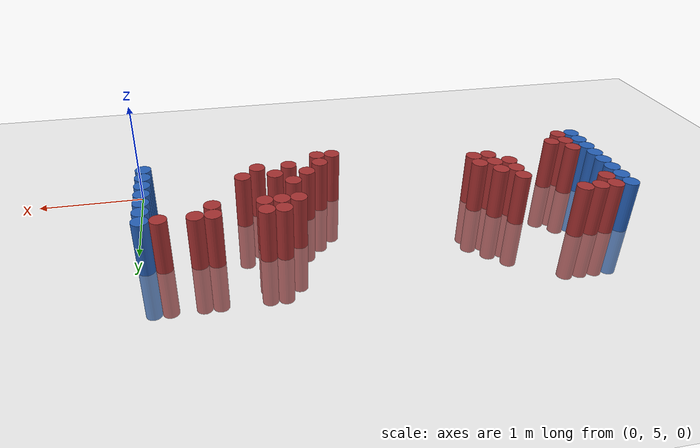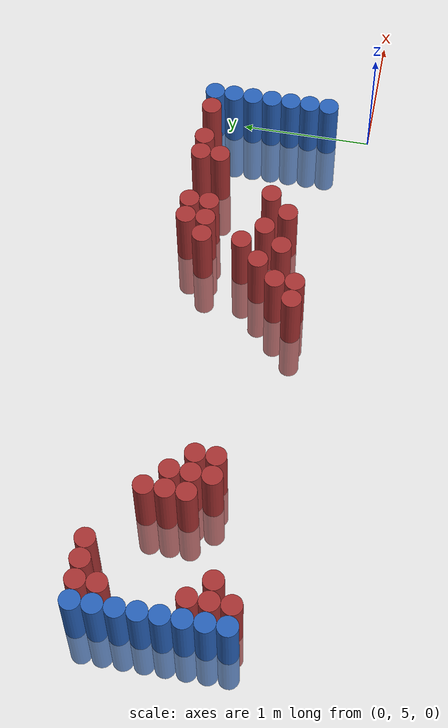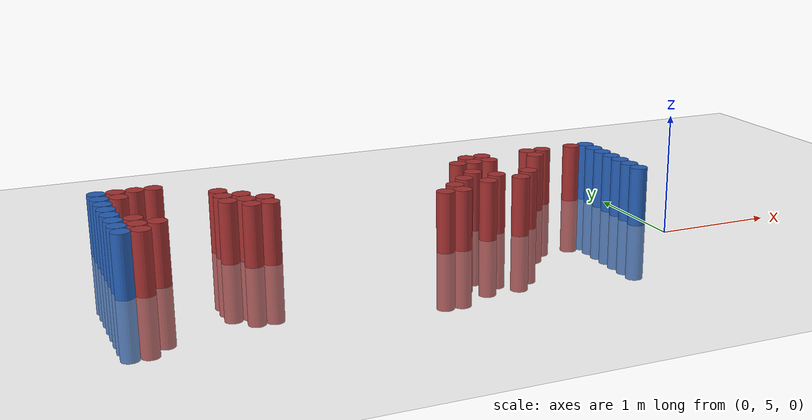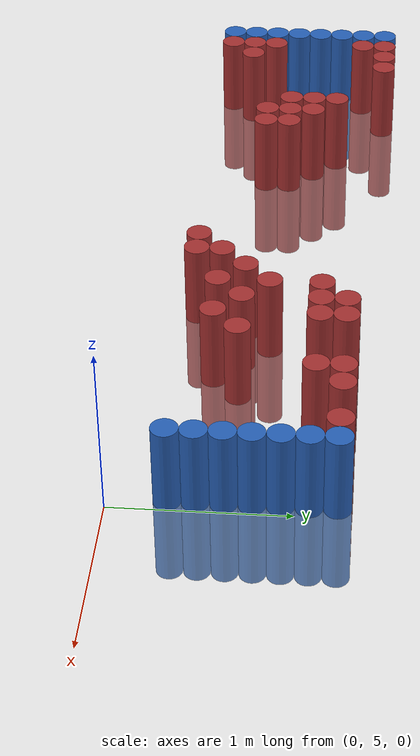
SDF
<sdf version="1.6">
 <world name="default">
  <model name="ground_plane">
   <static>1</static>
   <link name="link">
    <collision name="collision">
     <geometry><plane><normal>0 0 1</normal><size>100 100</size></plane></geometry>
     <surface><friction><ode><mu>100</mu><mu2>50</mu2></ode></friction></surface>
    </collision>
    <visual name="visual">
     <cast_shadows>0</cast_shadows>
     <geometry><plane><normal>0 0 1</normal><size>100 100</size></plane></geometry>
     <material>
      <script><uri>file://media/materials/scripts/gazebo.material</uri><name>Gazebo/Grey</name></script>
     </material>
    </visual>
   </link>
  </model>
  <model name="unit_cylinder_97">
   <static>1</static>
   <pose>-4.425000 5.325000 0.000000 0.000000 0.000000 0.000000</pose>
   <link name="link">
    <inertial>
     <mass>1</mass>
     <inertia><ixx>0.145833</ixx><ixy>0</ixy><ixz>0</ixz><iyy>0.145833</iyy><iyz>0</iyz><izz>0.125</izz></inertia>
    </inertial>
    <collision name="collision">
     <geometry><cylinder><radius>0.075000</radius><length>1</length></cylinder></geometry>
    </collision>
    <visual name="visual">
     <geometry><cylinder><radius>0.075000</radius><length>1</length></cylinder></geometry>
     <material>
      <ambient>0.152000 0.379000 0.720000 1</ambient>
      <diffuse>0.152000 0.379000 0.720000 1</diffuse>
     </material>
     <material>
      <script><name>Gazebo/Grey</name><uri>file://media/materials/scripts/gazebo.material</uri></script>
     </material>
    </visual>
   </link>
  </model>
  <model name="unit_cylinder_98">
   <static>1</static>
   <pose>-4.425000 5.475000 0.000000 0.000000 0.000000 0.000000</pose>
   <link name="link">
    <inertial>
     <mass>1</mass>
     <inertia><ixx>0.145833</ixx><ixy>0</ixy><ixz>0</ixz><iyy>0.145833</iyy><iyz>0</iyz><izz>0.125</izz></inertia>
    </inertial>
    <collision name="collision">
     <geometry><cylinder><radius>0.075000</radius><length>1</length></cylinder></geometry>
    </collision>
    <visual name="visual">
     <geometry><cylinder><radius>0.075000</radius><length>1</length></cylinder></geometry>
     <material>
      <ambient>0.152000 0.379000 0.720000 1</ambient>
      <diffuse>0.152000 0.379000 0.720000 1</diffuse>
     </material>
     <material>
      <script><name>Gazebo/Grey</name><uri>file://media/materials/scripts/gazebo.material</uri></script>
     </material>
    </visual>
   </link>
  </model>
  <model name="unit_cylinder_99">
   <static>1</static>
   <pose>-4.425000 5.625000 0.000000 0.000000 0.000000 0.000000</pose>
   <link name="link">
    <inertial>
     <mass>1</mass>
     <inertia><ixx>0.145833</ixx><ixy>0</ixy><ixz>0</ixz><iyy>0.145833</iyy><iyz>0</iyz><izz>0.125</izz></inertia>
    </inertial>
    <collision name="collision">
     <geometry><cylinder><radius>0.075000</radius><length>1</length></cylinder></geometry>
    </collision>
    <visual name="visual">
     <geometry><cylinder><radius>0.075000</radius><length>1</length></cylinder></geometry>
     <material>
      <ambient>0.152000 0.379000 0.720000 1</ambient>
      <diffuse>0.152000 0.379000 0.720000 1</diffuse>
     </material>
     <material>
      <script><name>Gazebo/Grey</name><uri>file://media/materials/scripts/gazebo.material</uri></script>
     </material>
    </visual>
   </link>
  </model>
  <model name="unit_cylinder_100">
   <static>1</static>
   <pose>-4.425000 5.775000 0.000000 0.000000 0.000000 0.000000</pose>
   <link name="link">
    <inertial>
     <mass>1</mass>
     <inertia><ixx>0.145833</ixx><ixy>0</ixy><ixz>0</ixz><iyy>0.145833</iyy><iyz>0</iyz><izz>0.125</izz></inertia>
    </inertial>
    <collision name="collision">
     <geometry><cylinder><radius>0.075000</radius><length>1</length></cylinder></geometry>
    </collision>
    <visual name="visual">
     <geometry><cylinder><radius>0.075000</radius><length>1</length></cylinder></geometry>
     <material>
      <ambient>0.152000 0.379000 0.720000 1</ambient>
      <diffuse>0.152000 0.379000 0.720000 1</diffuse>
     </material>
     <material>
      <script><name>Gazebo/Grey</name><uri>file://media/materials/scripts/gazebo.material</uri></script>
     </material>
    </visual>
   </link>
  </model>
  <model name="unit_cylinder_101">
   <static>1</static>
   <pose>-4.425000 5.925000 0.000000 0.000000 0.000000 0.000000</pose>
   <link name="link">
    <inertial>
     <mass>1</mass>
     <inertia><ixx>0.145833</ixx><ixy>0</ixy><ixz>0</ixz><iyy>0.145833</iyy><iyz>0</iyz><izz>0.125</izz></inertia>
    </inertial>
    <collision name="collision">
     <geometry><cylinder><radius>0.075000</radius><length>1</length></cylinder></geometry>
    </collision>
    <visual name="visual">
     <geometry><cylinder><radius>0.075000</radius><length>1</length></cylinder></geometry>
     <material>
      <ambient>0.152000 0.379000 0.720000 1</ambient>
      <diffuse>0.152000 0.379000 0.720000 1</diffuse>
     </material>
     <material>
      <script><name>Gazebo/Grey</name><uri>file://media/materials/scripts/gazebo.material</uri></script>
     </material>
    </visual>
   </link>
  </model>
  <model name="unit_cylinder_102">
   <static>1</static>
   <pose>-4.425000 6.075000 0.000000 0.000000 0.000000 0.000000</pose>
   <link name="link">
    <inertial>
     <mass>1</mass>
     <inertia><ixx>0.145833</ixx><ixy>0</ixy><ixz>0</ixz><iyy>0.145833</iyy><iyz>0</iyz><izz>0.125</izz></inertia>
    </inertial>
    <collision name="collision">
     <geometry><cylinder><radius>0.075000</radius><length>1</length></cylinder></geometry>
    </collision>
    <visual name="visual">
     <geometry><cylinder><radius>0.075000</radius><length>1</length></cylinder></geometry>
     <material>
      <ambient>0.152000 0.379000 0.720000 1</ambient>
      <diffuse>0.152000 0.379000 0.720000 1</diffuse>
     </material>
     <material>
      <script><name>Gazebo/Grey</name><uri>file://media/materials/scripts/gazebo.material</uri></script>
     </material>
    </visual>
   </link>
  </model>
  <model name="unit_cylinder_103">
   <static>1</static>
   <pose>-4.425000 6.225000 0.000000 0.000000 0.000000 0.000000</pose>
   <link name="link">
    <inertial>
     <mass>1</mass>
     <inertia><ixx>0.145833</ixx><ixy>0</ixy><ixz>0</ixz><iyy>0.145833</iyy><iyz>0</iyz><izz>0.125</izz></inertia>
    </inertial>
    <collision name="collision">
     <geometry><cylinder><radius>0.075000</radius><length>1</length></cylinder></geometry>
    </collision>
    <visual name="visual">
     <geometry><cylinder><radius>0.075000</radius><length>1</length></cylinder></geometry>
     <material>
      <ambient>0.152000 0.379000 0.720000 1</ambient>
      <diffuse>0.152000 0.379000 0.720000 1</diffuse>
     </material>
     <material>
      <script><name>Gazebo/Grey</name><uri>file://media/materials/scripts/gazebo.material</uri></script>
     </material>
    </visual>
   </link>
  </model>
  <model name="unit_cylinder_104">
   <static>1</static>
   <pose>-4.425000 6.375000 0.000000 0.000000 0.000000 0.000000</pose>
   <link name="link">
    <inertial>
     <mass>1</mass>
     <inertia><ixx>0.145833</ixx><ixy>0</ixy><ixz>0</ixz><iyy>0.145833</iyy><iyz>0</iyz><izz>0.125</izz></inertia>
    </inertial>
    <collision name="collision">
     <geometry><cylinder><radius>0.075000</radius><length>1</length></cylinder></geometry>
    </collision>
    <visual name="visual">
     <geometry><cylinder><radius>0.075000</radius><length>1</length></cylinder></geometry>
     <material>
      <ambient>0.152000 0.379000 0.720000 1</ambient>
      <diffuse>0.152000 0.379000 0.720000 1</diffuse>
     </material>
     <material>
      <script><name>Gazebo/Grey</name><uri>file://media/materials/scripts/gazebo.material</uri></script>
     </material>
    </visual>
   </link>
  </model>
  <model name="unit_cylinder_126">
   <static>1</static>
   <pose>-4.275000 5.325000 0.000000 0.000000 0.000000 0.000000</pose>
   <link name="link">
    <inertial>
     <mass>1</mass>
     <inertia><ixx>0.145833</ixx><ixy>0</ixy><ixz>0</ixz><iyy>0.145833</iyy><iyz>0</iyz><izz>0.125</izz></inertia>
    </inertial>
    <collision name="collision">
     <geometry><cylinder><radius>0.075000</radius><length>1</length></cylinder></geometry>
    </collision>
    <visual name="visual">
     <geometry><cylinder><radius>0.075000</radius><length>1</length></cylinder></geometry>
     <material>
      <ambient>0.648000 0.192000 0.192000 1</ambient>
      <diffuse>0.648000 0.192000 0.192000 1</diffuse>
     </material>
     <material>
      <script><name>Gazebo/Grey</name><uri>file://media/materials/scripts/gazebo.material</uri></script>
     </material>
    </visual>
   </link>
  </model>
  <model name="unit_cylinder_127">
   <static>1</static>
   <pose>-4.275000 5.475000 0.000000 0.000000 0.000000 0.000000</pose>
   <link name="link">
    <inertial>
     <mass>1</mass>
     <inertia><ixx>0.145833</ixx><ixy>0</ixy><ixz>0</ixz><iyy>0.145833</iyy><iyz>0</iyz><izz>0.125</izz></inertia>
    </inertial>
    <collision name="collision">
     <geometry><cylinder><radius>0.075000</radius><length>1</length></cylinder></geometry>
    </collision>
    <visual name="visual">
     <geometry><cylinder><radius>0.075000</radius><length>1</length></cylinder></geometry>
     <material>
      <ambient>0.648000 0.192000 0.192000 1</ambient>
      <diffuse>0.648000 0.192000 0.192000 1</diffuse>
     </material>
     <material>
      <script><name>Gazebo/Grey</name><uri>file://media/materials/scripts/gazebo.material</uri></script>
     </material>
    </visual>
   </link>
  </model>
  <model name="unit_cylinder_128">
   <static>1</static>
   <pose>-4.275000 5.625000 0.000000 0.000000 0.000000 0.000000</pose>
   <link name="link">
    <inertial>
     <mass>1</mass>
     <inertia><ixx>0.145833</ixx><ixy>0</ixy><ixz>0</ixz><iyy>0.145833</iyy><iyz>0</iyz><izz>0.125</izz></inertia>
    </inertial>
    <collision name="collision">
     <geometry><cylinder><radius>0.075000</radius><length>1</length></cylinder></geometry>
    </collision>
    <visual name="visual">
     <geometry><cylinder><radius>0.075000</radius><length>1</length></cylinder></geometry>
     <material>
      <ambient>0.648000 0.192000 0.192000 1</ambient>
      <diffuse>0.648000 0.192000 0.192000 1</diffuse>
     </material>
     <material>
      <script><name>Gazebo/Grey</name><uri>file://media/materials/scripts/gazebo.material</uri></script>
     </material>
    </visual>
   </link>
  </model>
  <model name="unit_cylinder_129">
   <static>1</static>
   <pose>-4.275000 6.225000 0.000000 0.000000 0.000000 0.000000</pose>
   <link name="link">
    <inertial>
     <mass>1</mass>
     <inertia><ixx>0.145833</ixx><ixy>0</ixy><ixz>0</ixz><iyy>0.145833</iyy><iyz>0</iyz><izz>0.125</izz></inertia>
    </inertial>
    <collision name="collision">
     <geometry><cylinder><radius>0.075000</radius><length>1</length></cylinder></geometry>
    </collision>
    <visual name="visual">
     <geometry><cylinder><radius>0.075000</radius><length>1</length></cylinder></geometry>
     <material>
      <ambient>0.648000 0.192000 0.192000 1</ambient>
      <diffuse>0.648000 0.192000 0.192000 1</diffuse>
     </material>
     <material>
      <script><name>Gazebo/Grey</name><uri>file://media/materials/scripts/gazebo.material</uri></script>
     </material>
    </visual>
   </link>
  </model>
  <model name="unit_cylinder_130">
   <static>1</static>
   <pose>-4.275000 6.375000 0.000000 0.000000 0.000000 0.000000</pose>
   <link name="link">
    <inertial>
     <mass>1</mass>
     <inertia><ixx>0.145833</ixx><ixy>0</ixy><ixz>0</ixz><iyy>0.145833</iyy><iyz>0</iyz><izz>0.125</izz></inertia>
    </inertial>
    <collision name="collision">
     <geometry><cylinder><radius>0.075000</radius><length>1</length></cylinder></geometry>
    </collision>
    <visual name="visual">
     <geometry><cylinder><radius>0.075000</radius><length>1</length></cylinder></geometry>
     <material>
      <ambient>0.648000 0.192000 0.192000 1</ambient>
      <diffuse>0.648000 0.192000 0.192000 1</diffuse>
     </material>
     <material>
      <script><name>Gazebo/Grey</name><uri>file://media/materials/scripts/gazebo.material</uri></script>
     </material>
    </visual>
   </link>
  </model>
  <model name="unit_cylinder_136">
   <static>1</static>
   <pose>-4.125000 5.475000 0.000000 0.000000 0.000000 0.000000</pose>
   <link name="link">
    <inertial>
     <mass>1</mass>
     <inertia><ixx>0.145833</ixx><ixy>0</ixy><ixz>0</ixz><iyy>0.145833</iyy><iyz>0</iyz><izz>0.125</izz></inertia>
    </inertial>
    <collision name="collision">
     <geometry><cylinder><radius>0.075000</radius><length>1</length></cylinder></geometry>
    </collision>
    <visual name="visual">
     <geometry><cylinder><radius>0.075000</radius><length>1</length></cylinder></geometry>
     <material>
      <ambient>0.648000 0.192000 0.192000 1</ambient>
      <diffuse>0.648000 0.192000 0.192000 1</diffuse>
     </material>
     <material>
      <script><name>Gazebo/Grey</name><uri>file://media/materials/scripts/gazebo.material</uri></script>
     </material>
    </visual>
   </link>
  </model>
  <model name="unit_cylinder_137">
   <static>1</static>
   <pose>-4.125000 6.375000 0.000000 0.000000 0.000000 0.000000</pose>
   <link name="link">
    <inertial>
     <mass>1</mass>
     <inertia><ixx>0.145833</ixx><ixy>0</ixy><ixz>0</ixz><iyy>0.145833</iyy><iyz>0</iyz><izz>0.125</izz></inertia>
    </inertial>
    <collision name="collision">
     <geometry><cylinder><radius>0.075000</radius><length>1</length></cylinder></geometry>
    </collision>
    <visual name="visual">
     <geometry><cylinder><radius>0.075000</radius><length>1</length></cylinder></geometry>
     <material>
      <ambient>0.648000 0.192000 0.192000 1</ambient>
      <diffuse>0.648000 0.192000 0.192000 1</diffuse>
     </material>
     <material>
      <script><name>Gazebo/Grey</name><uri>file://media/materials/scripts/gazebo.material</uri></script>
     </material>
    </visual>
   </link>
  </model>
  <model name="unit_cylinder_142">
   <static>1</static>
   <pose>-3.975000 6.375000 0.000000 0.000000 0.000000 0.000000</pose>
   <link name="link">
    <inertial>
     <mass>1</mass>
     <inertia><ixx>0.145833</ixx><ixy>0</ixy><ixz>0</ixz><iyy>0.145833</iyy><iyz>0</iyz><izz>0.125</izz></inertia>
    </inertial>
    <collision name="collision">
     <geometry><cylinder><radius>0.075000</radius><length>1</length></cylinder></geometry>
    </collision>
    <visual name="visual">
     <geometry><cylinder><radius>0.075000</radius><length>1</length></cylinder></geometry>
     <material>
      <ambient>0.648000 0.192000 0.192000 1</ambient>
      <diffuse>0.648000 0.192000 0.192000 1</diffuse>
     </material>
     <material>
      <script><name>Gazebo/Grey</name><uri>file://media/materials/scripts/gazebo.material</uri></script>
     </material>
    </visual>
   </link>
  </model>
  <model name="unit_cylinder_162">
   <static>1</static>
   <pose>-3.525000 5.775000 0.000000 0.000000 0.000000 0.000000</pose>
   <link name="link">
    <inertial>
     <mass>1</mass>
     <inertia><ixx>0.145833</ixx><ixy>0</ixy><ixz>0</ixz><iyy>0.145833</iyy><iyz>0</iyz><izz>0.125</izz></inertia>
    </inertial>
    <collision name="collision">
     <geometry><cylinder><radius>0.075000</radius><length>1</length></cylinder></geometry>
    </collision>
    <visual name="visual">
     <geometry><cylinder><radius>0.075000</radius><length>1</length></cylinder></geometry>
     <material>
      <ambient>0.648000 0.192000 0.192000 1</ambient>
      <diffuse>0.648000 0.192000 0.192000 1</diffuse>
     </material>
     <material>
      <script><name>Gazebo/Grey</name><uri>file://media/materials/scripts/gazebo.material</uri></script>
     </material>
    </visual>
   </link>
  </model>
  <model name="unit_cylinder_163">
   <static>1</static>
   <pose>-3.525000 5.925000 0.000000 0.000000 0.000000 0.000000</pose>
   <link name="link">
    <inertial>
     <mass>1</mass>
     <inertia><ixx>0.145833</ixx><ixy>0</ixy><ixz>0</ixz><iyy>0.145833</iyy><iyz>0</iyz><izz>0.125</izz></inertia>
    </inertial>
    <collision name="collision">
     <geometry><cylinder><radius>0.075000</radius><length>1</length></cylinder></geometry>
    </collision>
    <visual name="visual">
     <geometry><cylinder><radius>0.075000</radius><length>1</length></cylinder></geometry>
     <material>
      <ambient>0.648000 0.192000 0.192000 1</ambient>
      <diffuse>0.648000 0.192000 0.192000 1</diffuse>
     </material>
     <material>
      <script><name>Gazebo/Grey</name><uri>file://media/materials/scripts/gazebo.material</uri></script>
     </material>
    </visual>
   </link>
  </model>
  <model name="unit_cylinder_164">
   <static>1</static>
   <pose>-3.525000 6.075000 0.000000 0.000000 0.000000 0.000000</pose>
   <link name="link">
    <inertial>
     <mass>1</mass>
     <inertia><ixx>0.145833</ixx><ixy>0</ixy><ixz>0</ixz><iyy>0.145833</iyy><iyz>0</iyz><izz>0.125</izz></inertia>
    </inertial>
    <collision name="collision">
     <geometry><cylinder><radius>0.075000</radius><length>1</length></cylinder></geometry>
    </collision>
    <visual name="visual">
     <geometry><cylinder><radius>0.075000</radius><length>1</length></cylinder></geometry>
     <material>
      <ambient>0.648000 0.192000 0.192000 1</ambient>
      <diffuse>0.648000 0.192000 0.192000 1</diffuse>
     </material>
     <material>
      <script><name>Gazebo/Grey</name><uri>file://media/materials/scripts/gazebo.material</uri></script>
     </material>
    </visual>
   </link>
  </model>
  <model name="unit_cylinder_165">
   <static>1</static>
   <pose>-3.375000 5.625000 0.000000 0.000000 0.000000 0.000000</pose>
   <link name="link">
    <inertial>
     <mass>1</mass>
     <inertia><ixx>0.145833</ixx><ixy>0</ixy><ixz>0</ixz><iyy>0.145833</iyy><iyz>0</iyz><izz>0.125</izz></inertia>
    </inertial>
    <collision name="collision">
     <geometry><cylinder><radius>0.075000</radius><length>1</length></cylinder></geometry>
    </collision>
    <visual name="visual">
     <geometry><cylinder><radius>0.075000</radius><length>1</length></cylinder></geometry>
     <material>
      <ambient>0.648000 0.192000 0.192000 1</ambient>
      <diffuse>0.648000 0.192000 0.192000 1</diffuse>
     </material>
     <material>
      <script><name>Gazebo/Grey</name><uri>file://media/materials/scripts/gazebo.material</uri></script>
     </material>
    </visual>
   </link>
  </model>
  <model name="unit_cylinder_166">
   <static>1</static>
   <pose>-3.375000 5.775000 0.000000 0.000000 0.000000 0.000000</pose>
   <link name="link">
    <inertial>
     <mass>1</mass>
     <inertia><ixx>0.145833</ixx><ixy>0</ixy><ixz>0</ixz><iyy>0.145833</iyy><iyz>0</iyz><izz>0.125</izz></inertia>
    </inertial>
    <collision name="collision">
     <geometry><cylinder><radius>0.075000</radius><length>1</length></cylinder></geometry>
    </collision>
    <visual name="visual">
     <geometry><cylinder><radius>0.075000</radius><length>1</length></cylinder></geometry>
     <material>
      <ambient>0.648000 0.192000 0.192000 1</ambient>
      <diffuse>0.648000 0.192000 0.192000 1</diffuse>
     </material>
     <material>
      <script><name>Gazebo/Grey</name><uri>file://media/materials/scripts/gazebo.material</uri></script>
     </material>
    </visual>
   </link>
  </model>
  <model name="unit_cylinder_167">
   <static>1</static>
   <pose>-3.375000 5.925000 0.000000 0.000000 0.000000 0.000000</pose>
   <link name="link">
    <inertial>
     <mass>1</mass>
     <inertia><ixx>0.145833</ixx><ixy>0</ixy><ixz>0</ixz><iyy>0.145833</iyy><iyz>0</iyz><izz>0.125</izz></inertia>
    </inertial>
    <collision name="collision">
     <geometry><cylinder><radius>0.075000</radius><length>1</length></cylinder></geometry>
    </collision>
    <visual name="visual">
     <geometry><cylinder><radius>0.075000</radius><length>1</length></cylinder></geometry>
     <material>
      <ambient>0.648000 0.192000 0.192000 1</ambient>
      <diffuse>0.648000 0.192000 0.192000 1</diffuse>
     </material>
     <material>
      <script><name>Gazebo/Grey</name><uri>file://media/materials/scripts/gazebo.material</uri></script>
     </material>
    </visual>
   </link>
  </model>
  <model name="unit_cylinder_168">
   <static>1</static>
   <pose>-3.225000 5.625000 0.000000 0.000000 0.000000 0.000000</pose>
   <link name="link">
    <inertial>
     <mass>1</mass>
     <inertia><ixx>0.145833</ixx><ixy>0</ixy><ixz>0</ixz><iyy>0.145833</iyy><iyz>0</iyz><izz>0.125</izz></inertia>
    </inertial>
    <collision name="collision">
     <geometry><cylinder><radius>0.075000</radius><length>1</length></cylinder></geometry>
    </collision>
    <visual name="visual">
     <geometry><cylinder><radius>0.075000</radius><length>1</length></cylinder></geometry>
     <material>
      <ambient>0.648000 0.192000 0.192000 1</ambient>
      <diffuse>0.648000 0.192000 0.192000 1</diffuse>
     </material>
     <material>
      <script><name>Gazebo/Grey</name><uri>file://media/materials/scripts/gazebo.material</uri></script>
     </material>
    </visual>
   </link>
  </model>
  <model name="unit_cylinder_169">
   <static>1</static>
   <pose>-3.225000 5.775000 0.000000 0.000000 0.000000 0.000000</pose>
   <link name="link">
    <inertial>
     <mass>1</mass>
     <inertia><ixx>0.145833</ixx><ixy>0</ixy><ixz>0</ixz><iyy>0.145833</iyy><iyz>0</iyz><izz>0.125</izz></inertia>
    </inertial>
    <collision name="collision">
     <geometry><cylinder><radius>0.075000</radius><length>1</length></cylinder></geometry>
    </collision>
    <visual name="visual">
     <geometry><cylinder><radius>0.075000</radius><length>1</length></cylinder></geometry>
     <material>
      <ambient>0.648000 0.192000 0.192000 1</ambient>
      <diffuse>0.648000 0.192000 0.192000 1</diffuse>
     </material>
     <material>
      <script><name>Gazebo/Grey</name><uri>file://media/materials/scripts/gazebo.material</uri></script>
     </material>
    </visual>
   </link>
  </model>
  <model name="unit_cylinder_177">
   <static>1</static>
   <pose>-1.875000 5.325000 0.000000 0.000000 0.000000 0.000000</pose>
   <link name="link">
    <inertial>
     <mass>1</mass>
     <inertia><ixx>0.145833</ixx><ixy>0</ixy><ixz>0</ixz><iyy>0.145833</iyy><iyz>0</iyz><izz>0.125</izz></inertia>
    </inertial>
    <collision name="collision">
     <geometry><cylinder><radius>0.075000</radius><length>1</length></cylinder></geometry>
    </collision>
    <visual name="visual">
     <geometry><cylinder><radius>0.075000</radius><length>1</length></cylinder></geometry>
     <material>
      <ambient>0.648000 0.192000 0.192000 1</ambient>
      <diffuse>0.648000 0.192000 0.192000 1</diffuse>
     </material>
     <material>
      <script><name>Gazebo/Grey</name><uri>file://media/materials/scripts/gazebo.material</uri></script>
     </material>
    </visual>
   </link>
  </model>
  <model name="unit_cylinder_185">
   <static>1</static>
   <pose>-1.725000 5.325000 0.000000 0.000000 0.000000 0.000000</pose>
   <link name="link">
    <inertial>
     <mass>1</mass>
     <inertia><ixx>0.145833</ixx><ixy>0</ixy><ixz>0</ixz><iyy>0.145833</iyy><iyz>0</iyz><izz>0.125</izz></inertia>
    </inertial>
    <collision name="collision">
     <geometry><cylinder><radius>0.075000</radius><length>1</length></cylinder></geometry>
    </collision>
    <visual name="visual">
     <geometry><cylinder><radius>0.075000</radius><length>1</length></cylinder></geometry>
     <material>
      <ambient>0.648000 0.192000 0.192000 1</ambient>
      <diffuse>0.648000 0.192000 0.192000 1</diffuse>
     </material>
     <material>
      <script><name>Gazebo/Grey</name><uri>file://media/materials/scripts/gazebo.material</uri></script>
     </material>
    </visual>
   </link>
  </model>
  <model name="unit_cylinder_186">
   <static>1</static>
   <pose>-1.725000 5.475000 0.000000 0.000000 0.000000 0.000000</pose>
   <link name="link">
    <inertial>
     <mass>1</mass>
     <inertia><ixx>0.145833</ixx><ixy>0</ixy><ixz>0</ixz><iyy>0.145833</iyy><iyz>0</iyz><izz>0.125</izz></inertia>
    </inertial>
    <collision name="collision">
     <geometry><cylinder><radius>0.075000</radius><length>1</length></cylinder></geometry>
    </collision>
    <visual name="visual">
     <geometry><cylinder><radius>0.075000</radius><length>1</length></cylinder></geometry>
     <material>
      <ambient>0.648000 0.192000 0.192000 1</ambient>
      <diffuse>0.648000 0.192000 0.192000 1</diffuse>
     </material>
     <material>
      <script><name>Gazebo/Grey</name><uri>file://media/materials/scripts/gazebo.material</uri></script>
     </material>
    </visual>
   </link>
  </model>
  <model name="unit_cylinder_192">
   <static>1</static>
   <pose>-1.575000 5.625000 0.000000 0.000000 0.000000 0.000000</pose>
   <link name="link">
    <inertial>
     <mass>1</mass>
     <inertia><ixx>0.145833</ixx><ixy>0</ixy><ixz>0</ixz><iyy>0.145833</iyy><iyz>0</iyz><izz>0.125</izz></inertia>
    </inertial>
    <collision name="collision">
     <geometry><cylinder><radius>0.075000</radius><length>1</length></cylinder></geometry>
    </collision>
    <visual name="visual">
     <geometry><cylinder><radius>0.075000</radius><length>1</length></cylinder></geometry>
     <material>
      <ambient>0.648000 0.192000 0.192000 1</ambient>
      <diffuse>0.648000 0.192000 0.192000 1</diffuse>
     </material>
     <material>
      <script><name>Gazebo/Grey</name><uri>file://media/materials/scripts/gazebo.material</uri></script>
     </material>
    </visual>
   </link>
  </model>
  <model name="unit_cylinder_196">
   <static>1</static>
   <pose>-1.425000 5.475000 0.000000 0.000000 0.000000 0.000000</pose>
   <link name="link">
    <inertial>
     <mass>1</mass>
     <inertia><ixx>0.145833</ixx><ixy>0</ixy><ixz>0</ixz><iyy>0.145833</iyy><iyz>0</iyz><izz>0.125</izz></inertia>
    </inertial>
    <collision name="collision">
     <geometry><cylinder><radius>0.075000</radius><length>1</length></cylinder></geometry>
    </collision>
    <visual name="visual">
     <geometry><cylinder><radius>0.075000</radius><length>1</length></cylinder></geometry>
     <material>
      <ambient>0.648000 0.192000 0.192000 1</ambient>
      <diffuse>0.648000 0.192000 0.192000 1</diffuse>
     </material>
     <material>
      <script><name>Gazebo/Grey</name><uri>file://media/materials/scripts/gazebo.material</uri></script>
     </material>
    </visual>
   </link>
  </model>
  <model name="unit_cylinder_197">
   <static>1</static>
   <pose>-1.425000 5.775000 0.000000 0.000000 0.000000 0.000000</pose>
   <link name="link">
    <inertial>
     <mass>1</mass>
     <inertia><ixx>0.145833</ixx><ixy>0</ixy><ixz>0</ixz><iyy>0.145833</iyy><iyz>0</iyz><izz>0.125</izz></inertia>
    </inertial>
    <collision name="collision">
     <geometry><cylinder><radius>0.075000</radius><length>1</length></cylinder></geometry>
    </collision>
    <visual name="visual">
     <geometry><cylinder><radius>0.075000</radius><length>1</length></cylinder></geometry>
     <material>
      <ambient>0.648000 0.192000 0.192000 1</ambient>
      <diffuse>0.648000 0.192000 0.192000 1</diffuse>
     </material>
     <material>
      <script><name>Gazebo/Grey</name><uri>file://media/materials/scripts/gazebo.material</uri></script>
     </material>
    </visual>
   </link>
  </model>
  <model name="unit_cylinder_198">
   <static>1</static>
   <pose>-1.425000 6.075000 0.000000 0.000000 0.000000 0.000000</pose>
   <link name="link">
    <inertial>
     <mass>1</mass>
     <inertia><ixx>0.145833</ixx><ixy>0</ixy><ixz>0</ixz><iyy>0.145833</iyy><iyz>0</iyz><izz>0.125</izz></inertia>
    </inertial>
    <collision name="collision">
     <geometry><cylinder><radius>0.075000</radius><length>1</length></cylinder></geometry>
    </collision>
    <visual name="visual">
     <geometry><cylinder><radius>0.075000</radius><length>1</length></cylinder></geometry>
     <material>
      <ambient>0.648000 0.192000 0.192000 1</ambient>
      <diffuse>0.648000 0.192000 0.192000 1</diffuse>
     </material>
     <material>
      <script><name>Gazebo/Grey</name><uri>file://media/materials/scripts/gazebo.material</uri></script>
     </material>
    </visual>
   </link>
  </model>
  <model name="unit_cylinder_201">
   <static>1</static>
   <pose>-1.275000 5.625000 0.000000 0.000000 0.000000 0.000000</pose>
   <link name="link">
    <inertial>
     <mass>1</mass>
     <inertia><ixx>0.145833</ixx><ixy>0</ixy><ixz>0</ixz><iyy>0.145833</iyy><iyz>0</iyz><izz>0.125</izz></inertia>
    </inertial>
    <collision name="collision">
     <geometry><cylinder><radius>0.075000</radius><length>1</length></cylinder></geometry>
    </collision>
    <visual name="visual">
     <geometry><cylinder><radius>0.075000</radius><length>1</length></cylinder></geometry>
     <material>
      <ambient>0.648000 0.192000 0.192000 1</ambient>
      <diffuse>0.648000 0.192000 0.192000 1</diffuse>
     </material>
     <material>
      <script><name>Gazebo/Grey</name><uri>file://media/materials/scripts/gazebo.material</uri></script>
     </material>
    </visual>
   </link>
  </model>
  <model name="unit_cylinder_202">
   <static>1</static>
   <pose>-1.275000 6.075000 0.000000 0.000000 0.000000 0.000000</pose>
   <link name="link">
    <inertial>
     <mass>1</mass>
     <inertia><ixx>0.145833</ixx><ixy>0</ixy><ixz>0</ixz><iyy>0.145833</iyy><iyz>0</iyz><izz>0.125</izz></inertia>
    </inertial>
    <collision name="collision">
     <geometry><cylinder><radius>0.075000</radius><length>1</length></cylinder></geometry>
    </collision>
    <visual name="visual">
     <geometry><cylinder><radius>0.075000</radius><length>1</length></cylinder></geometry>
     <material>
      <ambient>0.648000 0.192000 0.192000 1</ambient>
      <diffuse>0.648000 0.192000 0.192000 1</diffuse>
     </material>
     <material>
      <script><name>Gazebo/Grey</name><uri>file://media/materials/scripts/gazebo.material</uri></script>
     </material>
    </visual>
   </link>
  </model>
  <model name="unit_cylinder_203">
   <static>1</static>
   <pose>-1.275000 6.225000 0.000000 0.000000 0.000000 0.000000</pose>
   <link name="link">
    <inertial>
     <mass>1</mass>
     <inertia><ixx>0.145833</ixx><ixy>0</ixy><ixz>0</ixz><iyy>0.145833</iyy><iyz>0</iyz><izz>0.125</izz></inertia>
    </inertial>
    <collision name="collision">
     <geometry><cylinder><radius>0.075000</radius><length>1</length></cylinder></geometry>
    </collision>
    <visual name="visual">
     <geometry><cylinder><radius>0.075000</radius><length>1</length></cylinder></geometry>
     <material>
      <ambient>0.648000 0.192000 0.192000 1</ambient>
      <diffuse>0.648000 0.192000 0.192000 1</diffuse>
     </material>
     <material>
      <script><name>Gazebo/Grey</name><uri>file://media/materials/scripts/gazebo.material</uri></script>
     </material>
    </visual>
   </link>
  </model>
  <model name="unit_cylinder_207">
   <static>1</static>
   <pose>-1.125000 5.475000 0.000000 0.000000 0.000000 0.000000</pose>
   <link name="link">
    <inertial>
     <mass>1</mass>
     <inertia><ixx>0.145833</ixx><ixy>0</ixy><ixz>0</ixz><iyy>0.145833</iyy><iyz>0</iyz><izz>0.125</izz></inertia>
    </inertial>
    <collision name="collision">
     <geometry><cylinder><radius>0.075000</radius><length>1</length></cylinder></geometry>
    </collision>
    <visual name="visual">
     <geometry><cylinder><radius>0.075000</radius><length>1</length></cylinder></geometry>
     <material>
      <ambient>0.648000 0.192000 0.192000 1</ambient>
      <diffuse>0.648000 0.192000 0.192000 1</diffuse>
     </material>
     <material>
      <script><name>Gazebo/Grey</name><uri>file://media/materials/scripts/gazebo.material</uri></script>
     </material>
    </visual>
   </link>
  </model>
  <model name="unit_cylinder_208">
   <static>1</static>
   <pose>-1.125000 6.075000 0.000000 0.000000 0.000000 0.000000</pose>
   <link name="link">
    <inertial>
     <mass>1</mass>
     <inertia><ixx>0.145833</ixx><ixy>0</ixy><ixz>0</ixz><iyy>0.145833</iyy><iyz>0</iyz><izz>0.125</izz></inertia>
    </inertial>
    <collision name="collision">
     <geometry><cylinder><radius>0.075000</radius><length>1</length></cylinder></geometry>
    </collision>
    <visual name="visual">
     <geometry><cylinder><radius>0.075000</radius><length>1</length></cylinder></geometry>
     <material>
      <ambient>0.648000 0.192000 0.192000 1</ambient>
      <diffuse>0.648000 0.192000 0.192000 1</diffuse>
     </material>
     <material>
      <script><name>Gazebo/Grey</name><uri>file://media/materials/scripts/gazebo.material</uri></script>
     </material>
    </visual>
   </link>
  </model>
  <model name="unit_cylinder_209">
   <static>1</static>
   <pose>-1.125000 6.225000 0.000000 0.000000 0.000000 0.000000</pose>
   <link name="link">
    <inertial>
     <mass>1</mass>
     <inertia><ixx>0.145833</ixx><ixy>0</ixy><ixz>0</ixz><iyy>0.145833</iyy><iyz>0</iyz><izz>0.125</izz></inertia>
    </inertial>
    <collision name="collision">
     <geometry><cylinder><radius>0.075000</radius><length>1</length></cylinder></geometry>
    </collision>
    <visual name="visual">
     <geometry><cylinder><radius>0.075000</radius><length>1</length></cylinder></geometry>
     <material>
      <ambient>0.648000 0.192000 0.192000 1</ambient>
      <diffuse>0.648000 0.192000 0.192000 1</diffuse>
     </material>
     <material>
      <script><name>Gazebo/Grey</name><uri>file://media/materials/scripts/gazebo.material</uri></script>
     </material>
    </visual>
   </link>
  </model>
  <model name="unit_cylinder_216">
   <static>1</static>
   <pose>-0.975000 5.625000 0.000000 0.000000 0.000000 0.000000</pose>
   <link name="link">
    <inertial>
     <mass>1</mass>
     <inertia><ixx>0.145833</ixx><ixy>0</ixy><ixz>0</ixz><iyy>0.145833</iyy><iyz>0</iyz><izz>0.125</izz></inertia>
    </inertial>
    <collision name="collision">
     <geometry><cylinder><radius>0.075000</radius><length>1</length></cylinder></geometry>
    </collision>
    <visual name="visual">
     <geometry><cylinder><radius>0.075000</radius><length>1</length></cylinder></geometry>
     <material>
      <ambient>0.648000 0.192000 0.192000 1</ambient>
      <diffuse>0.648000 0.192000 0.192000 1</diffuse>
     </material>
     <material>
      <script><name>Gazebo/Grey</name><uri>file://media/materials/scripts/gazebo.material</uri></script>
     </material>
    </visual>
   </link>
  </model>
  <model name="unit_cylinder_231">
   <static>1</static>
   <pose>-0.675000 6.075000 0.000000 0.000000 0.000000 0.000000</pose>
   <link name="link">
    <inertial>
     <mass>1</mass>
     <inertia><ixx>0.145833</ixx><ixy>0</ixy><ixz>0</ixz><iyy>0.145833</iyy><iyz>0</iyz><izz>0.125</izz></inertia>
    </inertial>
    <collision name="collision">
     <geometry><cylinder><radius>0.075000</radius><length>1</length></cylinder></geometry>
    </collision>
    <visual name="visual">
     <geometry><cylinder><radius>0.075000</radius><length>1</length></cylinder></geometry>
     <material>
      <ambient>0.648000 0.192000 0.192000 1</ambient>
      <diffuse>0.648000 0.192000 0.192000 1</diffuse>
     </material>
     <material>
      <script><name>Gazebo/Grey</name><uri>file://media/materials/scripts/gazebo.material</uri></script>
     </material>
    </visual>
   </link>
  </model>
  <model name="unit_cylinder_232">
   <static>1</static>
   <pose>-0.675000 6.225000 0.000000 0.000000 0.000000 0.000000</pose>
   <link name="link">
    <inertial>
     <mass>1</mass>
     <inertia><ixx>0.145833</ixx><ixy>0</ixy><ixz>0</ixz><iyy>0.145833</iyy><iyz>0</iyz><izz>0.125</izz></inertia>
    </inertial>
    <collision name="collision">
     <geometry><cylinder><radius>0.075000</radius><length>1</length></cylinder></geometry>
    </collision>
    <visual name="visual">
     <geometry><cylinder><radius>0.075000</radius><length>1</length></cylinder></geometry>
     <material>
      <ambient>0.648000 0.192000 0.192000 1</ambient>
      <diffuse>0.648000 0.192000 0.192000 1</diffuse>
     </material>
     <material>
      <script><name>Gazebo/Grey</name><uri>file://media/materials/scripts/gazebo.material</uri></script>
     </material>
    </visual>
   </link>
  </model>
  <model name="unit_cylinder_236">
   <static>1</static>
   <pose>-0.525000 6.225000 0.000000 0.000000 0.000000 0.000000</pose>
   <link name="link">
    <inertial>
     <mass>1</mass>
     <inertia><ixx>0.145833</ixx><ixy>0</ixy><ixz>0</ixz><iyy>0.145833</iyy><iyz>0</iyz><izz>0.125</izz></inertia>
    </inertial>
    <collision name="collision">
     <geometry><cylinder><radius>0.075000</radius><length>1</length></cylinder></geometry>
    </collision>
    <visual name="visual">
     <geometry><cylinder><radius>0.075000</radius><length>1</length></cylinder></geometry>
     <material>
      <ambient>0.648000 0.192000 0.192000 1</ambient>
      <diffuse>0.648000 0.192000 0.192000 1</diffuse>
     </material>
     <material>
      <script><name>Gazebo/Grey</name><uri>file://media/materials/scripts/gazebo.material</uri></script>
     </material>
    </visual>
   </link>
  </model>
  <model name="unit_cylinder_246">
   <static>1</static>
   <pose>-0.225000 6.225000 0.000000 0.000000 0.000000 0.000000</pose>
   <link name="link">
    <inertial>
     <mass>1</mass>
     <inertia><ixx>0.145833</ixx><ixy>0</ixy><ixz>0</ixz><iyy>0.145833</iyy><iyz>0</iyz><izz>0.125</izz></inertia>
    </inertial>
    <collision name="collision">
     <geometry><cylinder><radius>0.075000</radius><length>1</length></cylinder></geometry>
    </collision>
    <visual name="visual">
     <geometry><cylinder><radius>0.075000</radius><length>1</length></cylinder></geometry>
     <material>
      <ambient>0.648000 0.192000 0.192000 1</ambient>
      <diffuse>0.648000 0.192000 0.192000 1</diffuse>
     </material>
     <material>
      <script><name>Gazebo/Grey</name><uri>file://media/materials/scripts/gazebo.material</uri></script>
     </material>
    </visual>
   </link>
  </model>
  <model name="unit_cylinder_265">
   <static>1</static>
   <pose>-0.075000 5.325000 0.000000 0.000000 0.000000 0.000000</pose>
   <link name="link">
    <inertial>
     <mass>1</mass>
     <inertia><ixx>0.145833</ixx><ixy>0</ixy><ixz>0</ixz><iyy>0.145833</iyy><iyz>0</iyz><izz>0.125</izz></inertia>
    </inertial>
    <collision name="collision">
     <geometry><cylinder><radius>0.075000</radius><length>1</length></cylinder></geometry>
    </collision>
    <visual name="visual">
     <geometry><cylinder><radius>0.075000</radius><length>1</length></cylinder></geometry>
     <material>
      <ambient>0.152000 0.379000 0.720000 1</ambient>
      <diffuse>0.152000 0.379000 0.720000 1</diffuse>
     </material>
     <material>
      <script><name>Gazebo/Grey</name><uri>file://media/materials/scripts/gazebo.material</uri></script>
     </material>
    </visual>
   </link>
  </model>
  <model name="unit_cylinder_266">
   <static>1</static>
   <pose>-0.075000 5.475000 0.000000 0.000000 0.000000 0.000000</pose>
   <link name="link">
    <inertial>
     <mass>1</mass>
     <inertia><ixx>0.145833</ixx><ixy>0</ixy><ixz>0</ixz><iyy>0.145833</iyy><iyz>0</iyz><izz>0.125</izz></inertia>
    </inertial>
    <collision name="collision">
     <geometry><cylinder><radius>0.075000</radius><length>1</length></cylinder></geometry>
    </collision>
    <visual name="visual">
     <geometry><cylinder><radius>0.075000</radius><length>1</length></cylinder></geometry>
     <material>
      <ambient>0.152000 0.379000 0.720000 1</ambient>
      <diffuse>0.152000 0.379000 0.720000 1</diffuse>
     </material>
     <material>
      <script><name>Gazebo/Grey</name><uri>file://media/materials/scripts/gazebo.material</uri></script>
     </material>
    </visual>
   </link>
  </model>
  <model name="unit_cylinder_267">
   <static>1</static>
   <pose>-0.075000 5.625000 0.000000 0.000000 0.000000 0.000000</pose>
   <link name="link">
    <inertial>
     <mass>1</mass>
     <inertia><ixx>0.145833</ixx><ixy>0</ixy><ixz>0</ixz><iyy>0.145833</iyy><iyz>0</iyz><izz>0.125</izz></inertia>
    </inertial>
    <collision name="collision">
     <geometry><cylinder><radius>0.075000</radius><length>1</length></cylinder></geometry>
    </collision>
    <visual name="visual">
     <geometry><cylinder><radius>0.075000</radius><length>1</length></cylinder></geometry>
     <material>
      <ambient>0.152000 0.379000 0.720000 1</ambient>
      <diffuse>0.152000 0.379000 0.720000 1</diffuse>
     </material>
     <material>
      <script><name>Gazebo/Grey</name><uri>file://media/materials/scripts/gazebo.material</uri></script>
     </material>
    </visual>
   </link>
  </model>
  <model name="unit_cylinder_268">
   <static>1</static>
   <pose>-0.075000 5.775000 0.000000 0.000000 0.000000 0.000000</pose>
   <link name="link">
    <inertial>
     <mass>1</mass>
     <inertia><ixx>0.145833</ixx><ixy>0</ixy><ixz>0</ixz><iyy>0.145833</iyy><iyz>0</iyz><izz>0.125</izz></inertia>
    </inertial>
    <collision name="collision">
     <geometry><cylinder><radius>0.075000</radius><length>1</length></cylinder></geometry>
    </collision>
    <visual name="visual">
     <geometry><cylinder><radius>0.075000</radius><length>1</length></cylinder></geometry>
     <material>
      <ambient>0.152000 0.379000 0.720000 1</ambient>
      <diffuse>0.152000 0.379000 0.720000 1</diffuse>
     </material>
     <material>
      <script><name>Gazebo/Grey</name><uri>file://media/materials/scripts/gazebo.material</uri></script>
     </material>
    </visual>
   </link>
  </model>
  <model name="unit_cylinder_269">
   <static>1</static>
   <pose>-0.075000 5.925000 0.000000 0.000000 0.000000 0.000000</pose>
   <link name="link">
    <inertial>
     <mass>1</mass>
     <inertia><ixx>0.145833</ixx><ixy>0</ixy><ixz>0</ixz><iyy>0.145833</iyy><iyz>0</iyz><izz>0.125</izz></inertia>
    </inertial>
    <collision name="collision">
     <geometry><cylinder><radius>0.075000</radius><length>1</length></cylinder></geometry>
    </collision>
    <visual name="visual">
     <geometry><cylinder><radius>0.075000</radius><length>1</length></cylinder></geometry>
     <material>
      <ambient>0.152000 0.379000 0.720000 1</ambient>
      <diffuse>0.152000 0.379000 0.720000 1</diffuse>
     </material>
     <material>
      <script><name>Gazebo/Grey</name><uri>file://media/materials/scripts/gazebo.material</uri></script>
     </material>
    </visual>
   </link>
  </model>
  <model name="unit_cylinder_270">
   <static>1</static>
   <pose>-0.075000 6.075000 0.000000 0.000000 0.000000 0.000000</pose>
   <link name="link">
    <inertial>
     <mass>1</mass>
     <inertia><ixx>0.145833</ixx><ixy>0</ixy><ixz>0</ixz><iyy>0.145833</iyy><iyz>0</iyz><izz>0.125</izz></inertia>
    </inertial>
    <collision name="collision">
     <geometry><cylinder><radius>0.075000</radius><length>1</length></cylinder></geometry>
    </collision>
    <visual name="visual">
     <geometry><cylinder><radius>0.075000</radius><length>1</length></cylinder></geometry>
     <material>
      <ambient>0.152000 0.379000 0.720000 1</ambient>
      <diffuse>0.152000 0.379000 0.720000 1</diffuse>
     </material>
     <material>
      <script><name>Gazebo/Grey</name><uri>file://media/materials/scripts/gazebo.material</uri></script>
     </material>
    </visual>
   </link>
  </model>
  <model name="unit_cylinder_271">
   <static>1</static>
   <pose>-0.075000 6.225000 0.000000 0.000000 0.000000 0.000000</pose>
   <link name="link">
    <inertial>
     <mass>1</mass>
     <inertia><ixx>0.145833</ixx><ixy>0</ixy><ixz>0</ixz><iyy>0.145833</iyy><iyz>0</iyz><izz>0.125</izz></inertia>
    </inertial>
    <collision name="collision">
     <geometry><cylinder><radius>0.075000</radius><length>1</length></cylinder></geometry>
    </collision>
    <visual name="visual">
     <geometry><cylinder><radius>0.075000</radius><length>1</length></cylinder></geometry>
     <material>
      <ambient>0.152000 0.379000 0.720000 1</ambient>
      <diffuse>0.152000 0.379000 0.720000 1</diffuse>
     </material>
     <material>
      <script><name>Gazebo/Grey</name><uri>file://media/materials/scripts/gazebo.material</uri></script>
     </material>
    </visual>
   </link>
  </model>
 </world>
</sdf>
